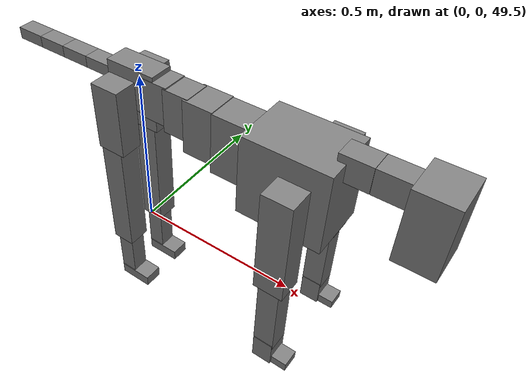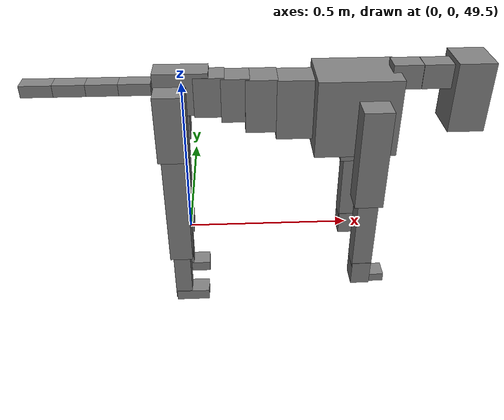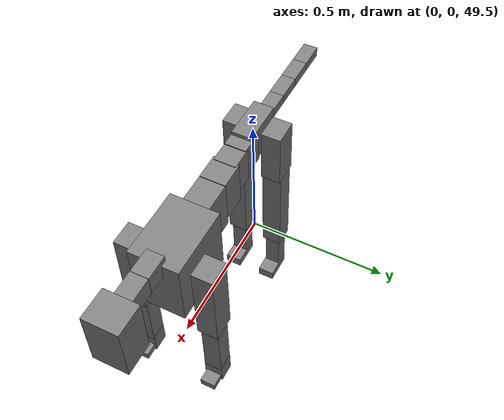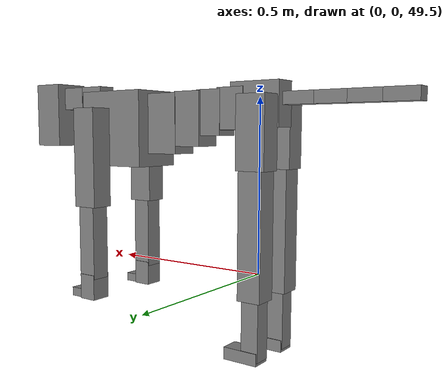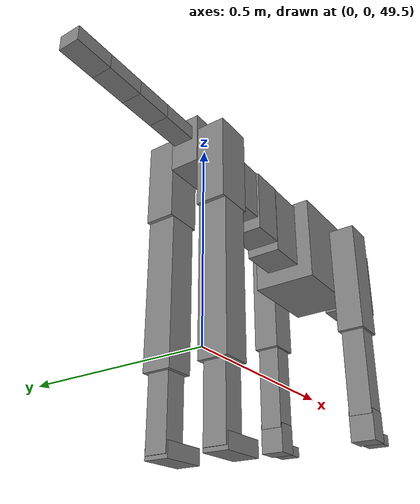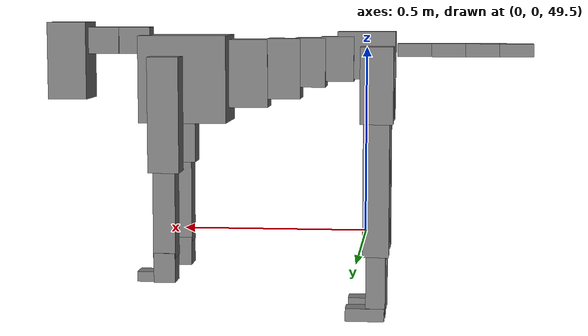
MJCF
<mujoco model="dog">

    <default>
        <joint armature="0.02" stiffness="1" damping="0.2" limited="true"/>
        <geom condim="3" friction="1 0.05 0.05" margin="0.01"/>
        <motor ctrllimited="true" ctrlrange="-1.0 1.0" forcelimited="true" gear="50"/>
    </default>

    <compiler inertiafromgeom="true" angle="radian"/>

    <option timestep="0.016" iterations="50" tolerance="1e-10" solver="Newton" jacobian="dense" cone="pyramidal"/>

    <size nconmax="20000" njmax="60000" nstack="5000000"/>
    <visual>
        <map force="0.1" zfar="30"/>
        <rgba haze="0.15 0.25 0.35 1"/>
        <quality shadowsize="2048"/>
        <global offwidth="800" offheight="800"/>
    </visual>

    <asset>
        <texture type="skybox" builtin="gradient" rgb1="0.3 0.5 0.7" rgb2="0 0 0" width="512" height="512"/>
        <texture name="texplane" type="2d" builtin="checker" rgb1=".2 .3 .4" rgb2=".1 0.15 0.2" width="512" height="512"
                 mark="cross" markrgb=".8 .8 .8"/>
        <texture name="texgeom" type="cube" builtin="flat" mark="cross" width="127" height="1278" rgb1="0.8 0.6 0.4"
                 rgb2="0.8 0.6 0.4" markrgb="1 1 1" random="0.01"/>

        <material name="matplane" reflectance="0.3" texture="texplane" texrepeat="1 1" texuniform="true"/>
        <material name="matgeom" texture="texgeom" texuniform="true" rgba="0.8 0.6 .4 1"/>
    </asset>

    <worldbody>
        <geom name="floor" pos="0 0 0" size="0 0 .25" type="plane" material="matplane" condim="3"/>

        <light directional="false" diffuse=".2 .2 .2" specular="0 0 0" pos="0 0 5" dir="0 0 -1" castshadow="false"/>
        <light mode="targetbodycom" target="torso" directional="false" diffuse=".8 .8 .8" specular="0.3 0.3 0.3"
               pos="0 0 4.0" dir="0 0 -1"/>

        <body name="root" pos="0 0 50">
            <freejoint name="root_1"/>
            <geom type="box" pos="0 0 -0.02" size="0.0774  0.0358  0.063" density="2030"/>

            <body name="spine1" pos="0.054 0 0">
                <joint name="spine1_y" axis="0 1 0" range="0 0.7" limited="true"/>
                <geom type="box" pos="0.02375 0 -0.03" size="0.04375  0.0375  0.05985" density="2030"/>

                <body name="spine2" pos="0.0612 0 0">
                    <joint name="spine2_y" axis="0 1 0" range="-0.15 0.15" limited="true"/>
                    <geom type="box" pos="0.03555  0  -0.04" size="0.04055  0.039  0.06615" density="2030"/>

                    <body name="spine3" pos="0.0730 0 0">
                        <joint name="spine3_y" axis="0 1 0" range="-0.15 0.15" limited="true"/>
                        <geom type="box" pos="0.03555  0  -0.057" size="0.04555  0.0445  0.081" density="2030"/>

                        <body name="spine4" pos="0.0780 0 0">
                            <joint name="spine4_y" axis="0 1 0" range="-0.15 0.15" limited="true"/>
                            <geom type="box" pos="0.05265  0  -0.07" size="0.05265  0.045  0.09135" density="2030"/>

                            <body name="torso" pos="0.1082 0 0">
                                <joint name="torso_y" axis="0 1 0" range="-0.15 0.15" limited="true"/>
                                <geom type="box" pos="0.11925  0  -0.085" size="0.11925  0.085  0.11745"
                                      density="2030"/>

                                <body name="neck1" pos="0.2160  0   0.0180">
                                    <joint name="neck1_y" axis="0 1 0" range="-1.2  -1" limited="true"/>
                                    <geom type="box" pos="0.0423  0  0" size="0.0423  0.03  0.036" density="2325"/>

                                    <body name="neck2" pos="0.0853  0  0">
                                        <joint name="neck2_y" axis="0 1 0" range="0.1  0" limited="true"/>
                                        <geom type="box" pos="0.0423  0  0" size="0.0423  0.03  0.036" density="2325"/>

                                        <body name="head" pos="0.0853  0  0">
                                            <joint name="head_y" axis="0 1 0" range="-0.3  -0.2" limited="true"/>
                                            <geom type="box" pos="0.0531  0  -0.055" size="0.0531  0.06  0.1044"
                                                  density="4030"/>

                                        </body>
                                    </body>
                                </body>

                                <body name="front_shoulder" pos="0.156  0   -0.0480">
                                    <joint name="front_shoulder_y" axis="0 1 0" range="-1 1.5" limited="true"/>
                                    <geom type="box" pos="0 0.13 -0.1270" size="0.0417  0.0356  0.1536" density="1158"/>
                                    <geom type="box" pos="0 -0.13 -0.1270" size="0.0417  0.0356  0.1536"
                                          density="1158"/>

                                    <body name="front_elbow" pos="0  0  -0.2539">
                                        <joint name="front_elbow_y" axis="0 1 0" range="-2 0" limited="true"/>
                                        <geom type="box" pos="0 0.13 -0.1276" size="0.0298  0.0304  0.1276"
                                              density="1081"/>
                                        <geom type="box" pos="0 -0.13 -0.1276" size="0.0298  0.0304  0.1276"
                                              density="1081"/>

                                        <body name="front_wrist" pos="0  0  -0.2553">
                                            <joint name="front_wrist_y" axis="0 1 0" range="-0.2 0" limited="true"/>
                                            <geom type="box" pos="0 0.13 -0.0266" size="0.0287  0.0319  0.0397"
                                                  density="1664"/>
                                            <geom type="box" pos="0 -0.13 -0.0266" size="0.0287  0.0319  0.0397"
                                                  density="1664"/>

                                            <body name="front_finger_end" pos="0  0  -0.0532">
                                                <joint name="front_finger_y" axis="0 1 0" range="-0.4 1"
                                                       limited="true"/>
                                                <geom type="box" pos="0.0261  0.13  0.0014"
                                                      size="0.0478  0.0261  0.0136" density="1515"/>
                                                <geom type="box" pos="0.0261  -0.13  0.0014"
                                                      size="0.0478  0.0261  0.0136" density="1515"/>

                                            </body>

                                        </body>
                                    </body>
                                </body>

                            </body>
                        </body>
                    </body>
                </body>
            </body>

            <body name="back_hip" pos="-0.03 0 -0.018">
                <joint name="back_hip_y" axis="0 1 0" range="-1.5 0.3" limited="true"/>
                <geom type="box" pos="0 0.07 -0.0796" size="0.0442  0.0347  0.1024" density="1154"/>
                <geom type="box" pos="0 -0.07 -0.0796" size="0.0442  0.0347  0.1024" density="1154"/>

                <body name="back_knee" pos="0  0  -0.1592">
                    <joint name="back_knee_y" axis="0 1 0" range="0 2.8" limited="true"/>
                    <geom type="box" pos="0 0.07 -0.1816" size="0.0350  0.0345  0.1972" density="1227"/>
                    <geom type="box" pos="0 -0.07 -0.1816" size="0.0350  0.0345  0.1972" density="1227"/>

                    <body name="back_ankle" pos="0  0  -0.3633">
                        <joint name="back_ankle_y" axis="0 1 0" range="-2.2 0" limited="true"/>
                        <geom type="box" pos="0 0.07 -0.0858" size="0.0262  0.0262  0.0970" density="1284"/>
                        <geom type="box" pos="0 -0.07 -0.0858" size="0.0262  0.0262  0.0970" density="1284"/>

                        <body name="back_toe_end" pos="0  0  -0.1716">
                            <joint name="back_toe_y" axis="0 1 0" range="-0.4 1" limited="true"/>
                            <geom type="box" pos="0.0286  0.07  -0.0026" size="0.0524  0.0286  0.0176" density="1515"/>
                            <geom type="box" pos="0.0286  -0.07  -0.0026" size="0.0524  0.0286  0.0176" density="1515"/>

                        </body>
                    </body>
                </body>
            </body>

            <body name="tail1" pos="-0.074 0 -0.006">
                <joint name="tail1_y" axis="0 1 0" range="-0.2 0.2" limited="true"/>
                <geom type="box" pos="-0.0536  0  0" size="0.045  0.025  0.0175" density="1587"/>

                <body name="tail2" pos="-0.09 0 0">
                    <joint name="tail2_y" axis="0 1 0" range="-0.2 0.2" limited="true"/>
                    <geom type="box" pos="-0.0536  0  0" size="0.045  0.025  0.0175" density="1587"/>

                    <body name="tail3" pos="-0.09 0 0">
                        <joint name="tail3_y" axis="0 1 0" range="-0.2 0.2" limited="true"/>
                        <geom type="box" pos="-0.0536  0  0" size="0.045  0.025  0.0175" density="1587"/>

                        <body name="tail4" pos="-0.09 0 0">
                            <joint name="tail4_y" axis="0 1 0" range="-0.2 0.2" limited="true"/>
                            <geom type="box" pos="-0.0536  0  0" size="0.045  0.025  0.0175" density="1587"/>

                        </body>
                    </body>
                </body>
            </body>
        </body>
    </worldbody>

    <actuator>
        <motor joint="spine1_y" forcerange="-150 150     "/>
        <motor joint="spine2_y" forcerange="-150 150     "/>
        <motor joint="spine3_y" forcerange="-150 150     "/>
        <motor joint="spine4_y" forcerange="-150 150     "/>
        <motor joint="torso_y" forcerange="-150 150     "/>
        <motor joint="neck1_y" forcerange="-100 100       "/>
        <motor joint="neck2_y" forcerange="-100 100       "/>
        <motor joint="head_y" forcerange="-150 150       "/>
        <motor joint="front_shoulder_y" forcerange="-187.97 149.36"/>
        <motor joint="front_elbow_y" forcerange="-132.06 189.22"/>
        <motor joint="front_wrist_y" forcerange="-130.28 124.82"/>
        <motor joint="front_finger_y" forcerange="-47.14 51.96"/>
        <motor joint="back_hip_y" forcerange="-353.29 309.31"/>
        <motor joint="back_knee_y" forcerange="-373.11 328.60"/>
        <motor joint="back_angle_y" forcerange="-156.46 162.46"/>
        <motor joint="back_toe_y" forcerange="-108.62 39.89"/>
        <motor joint="tail1_y" forcerange="-50 50     "/>
        <motor joint="tail2_y" forcerange="-50 50     "/>
        <motor joint="tail3_y" forcerange="-50 50     "/>
        <motor joint="tail4_y" forcerange="-50 50     "/>
    </actuator>
</mujoco>
